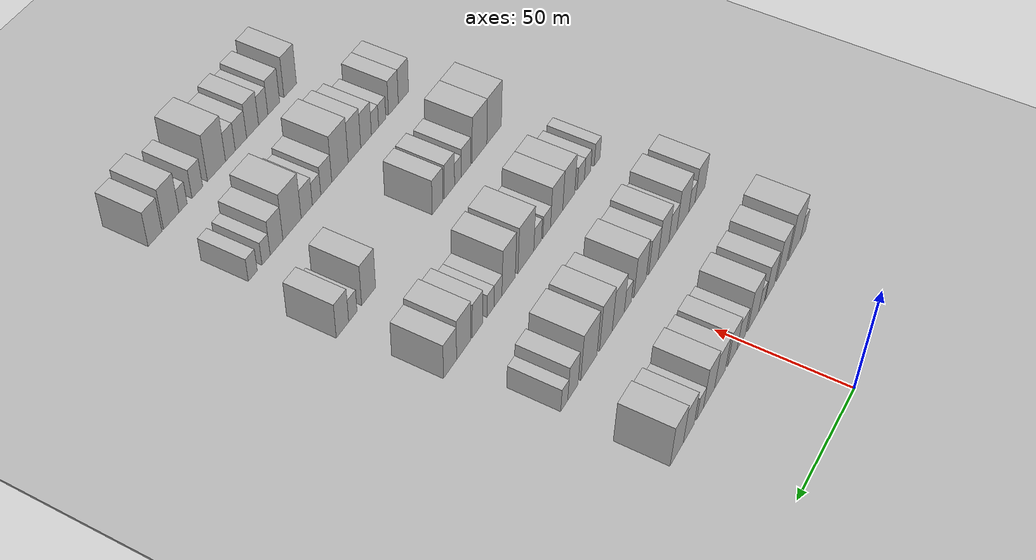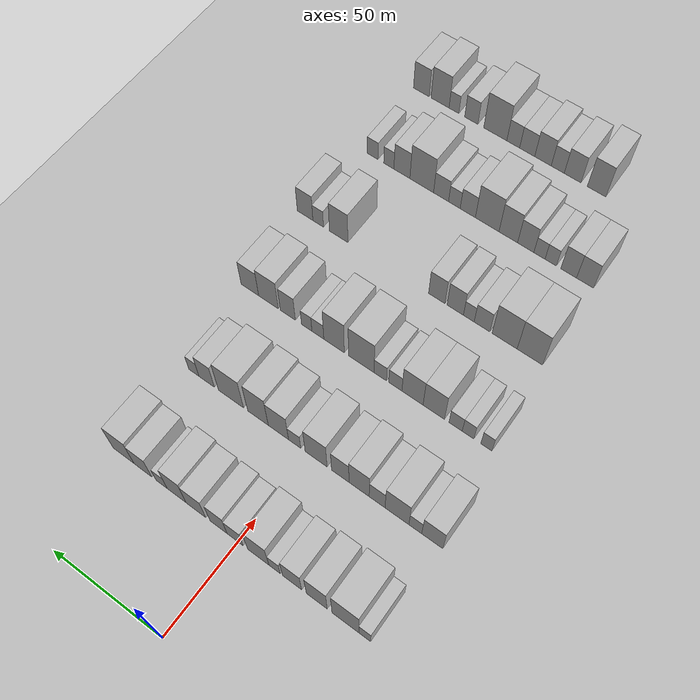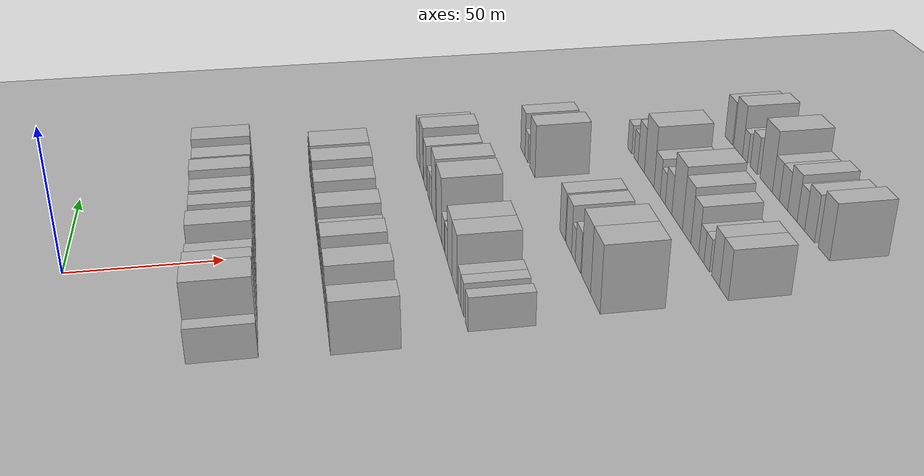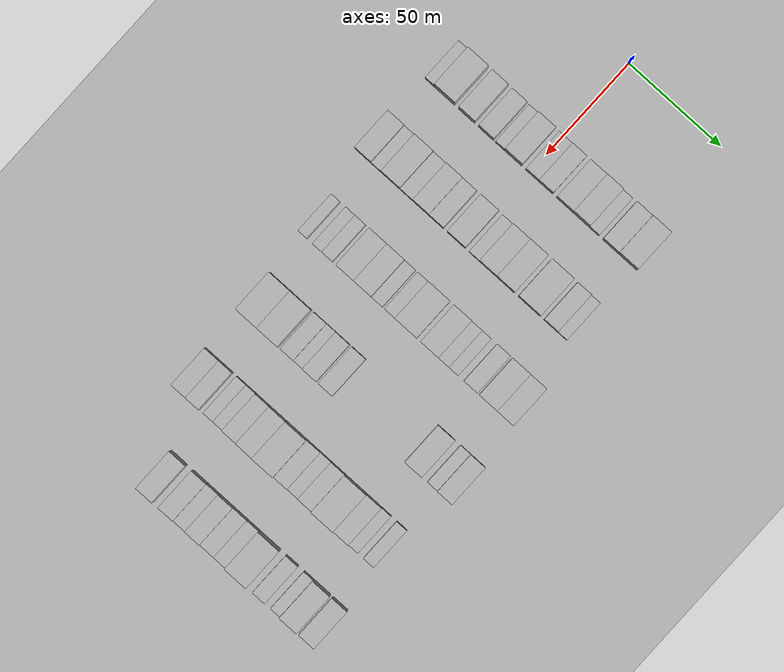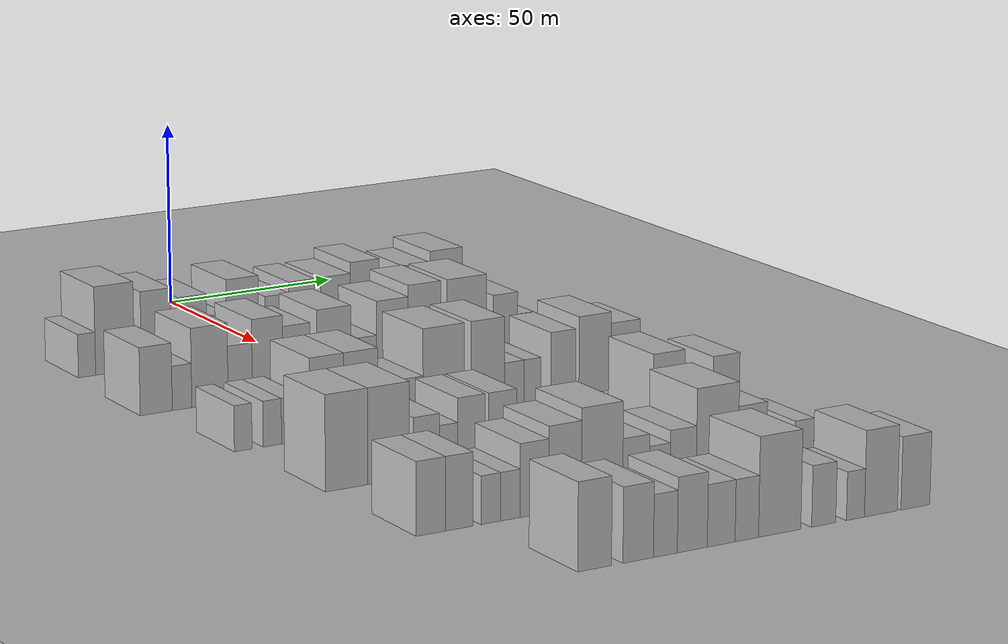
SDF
<sdf version="1.6">
 <world name="default">
  <include><name>ground_plane_1</name><uri>model://HANNAS_ground_plane</uri></include>
  <include>
   <name>ground_plane_2</name>
   <uri>model://HANNAS_ground_plane</uri>
   <pose>100 0 0  0 0 0</pose>
  </include>
  <model name="building_61">
   <static>1</static>
   <pose>50.0000 -54.5059 0 0.000000 0.000000 0.000000</pose>
   <link name="link">
    <pose>0 0 6.00 0 0 0</pose>
    <collision name="collision"><geometry><box><size>20.0000 4.9159 12.0000</size></box></geometry></collision>
    <visual name="visual">
     <cast_shadows>0</cast_shadows>
     <geometry><box><size>20.0000 4.9159 12.0000</size></box></geometry>
     <material>
      <script>
       <uri>model://HANNAS_wall/materials/scripts</uri>
       <uri>model://HANNAS_wall/materials/textures</uri>
       <name>vrc/HANNAS_wall</name>
      </script>
     </material>
    </visual>
   </link>
  </model>
  <model name="building_62">
   <static>1</static>
   <pose>50.0000 -46.4623 0 0.000000 0.000000 0.000000</pose>
   <link name="link">
    <pose>0 0 12.00 0 0 0</pose>
    <collision name="collision"><geometry><box><size>20.0000 11.1713 24.0000</size></box></geometry></collision>
    <visual name="visual">
     <cast_shadows>0</cast_shadows>
     <geometry><box><size>20.0000 11.1713 24.0000</size></box></geometry>
     <material>
      <script>
       <uri>model://HANNAS_wall/materials/scripts</uri>
       <uri>model://HANNAS_wall/materials/textures</uri>
       <name>vrc/HANNAS_wall</name>
      </script>
     </material>
    </visual>
   </link>
  </model>
  <model name="building_63">
   <static>1</static>
   <pose>50.0000 -34.4518 0 0.000000 0.000000 0.000000</pose>
   <link name="link">
    <pose>0 0 10.50 0 0 0</pose>
    <collision name="collision"><geometry><box><size>20.0000 8.8497 21.0000</size></box></geometry></collision>
    <visual name="visual">
     <cast_shadows>0</cast_shadows>
     <geometry><box><size>20.0000 8.8497 21.0000</size></box></geometry>
     <material>
      <script>
       <uri>model://HANNAS_wall/materials/scripts</uri>
       <uri>model://HANNAS_wall/materials/textures</uri>
       <name>vrc/HANNAS_wall</name>
      </script>
     </material>
    </visual>
   </link>
  </model>
  <model name="building_64">
   <static>1</static>
   <pose>50.0000 -23.8980 0 0.000000 0.000000 0.000000</pose>
   <link name="link">
    <pose>0 0 9.00 0 0 0</pose>
    <collision name="collision"><geometry><box><size>20.0000 8.2579 18.0000</size></box></geometry></collision>
    <visual name="visual">
     <cast_shadows>0</cast_shadows>
     <geometry><box><size>20.0000 8.2579 18.0000</size></box></geometry>
     <material>
      <script>
       <uri>model://HANNAS_wall/materials/scripts</uri>
       <uri>model://HANNAS_wall/materials/textures</uri>
       <name>vrc/HANNAS_wall</name>
      </script>
     </material>
    </visual>
   </link>
  </model>
  <model name="building_65">
   <static>1</static>
   <pose>50.0000 -16.3139 0 0.000000 0.000000 0.000000</pose>
   <link name="link">
    <pose>0 0 6.00 0 0 0</pose>
    <collision name="collision"><geometry><box><size>20.0000 4.9104 12.0000</size></box></geometry></collision>
    <visual name="visual">
     <cast_shadows>0</cast_shadows>
     <geometry><box><size>20.0000 4.9104 12.0000</size></box></geometry>
     <material>
      <script>
       <uri>model://HANNAS_wall/materials/scripts</uri>
       <uri>model://HANNAS_wall/materials/textures</uri>
       <name>vrc/HANNAS_wall</name>
      </script>
     </material>
    </visual>
   </link>
  </model>
  <model name="building_66">
   <static>1</static>
   <pose>50.0000 -9.1267 0 0.000000 0.000000 0.000000</pose>
   <link name="link">
    <pose>0 0 10.50 0 0 0</pose>
    <collision name="collision"><geometry><box><size>20.0000 9.4640 21.0000</size></box></geometry></collision>
    <visual name="visual">
     <cast_shadows>0</cast_shadows>
     <geometry><box><size>20.0000 9.4640 21.0000</size></box></geometry>
     <material>
      <script>
       <uri>model://HANNAS_wall/materials/scripts</uri>
       <uri>model://HANNAS_wall/materials/textures</uri>
       <name>vrc/HANNAS_wall</name>
      </script>
     </material>
    </visual>
   </link>
  </model>
  <model name="building_67">
   <static>1</static>
   <pose>50.0000 1.1772 0 0.000000 0.000000 0.000000</pose>
   <link name="link">
    <pose>0 0 7.50 0 0 0</pose>
    <collision name="collision"><geometry><box><size>20.0000 7.1438 15.0000</size></box></geometry></collision>
    <visual name="visual">
     <cast_shadows>0</cast_shadows>
     <geometry><box><size>20.0000 7.1438 15.0000</size></box></geometry>
     <material>
      <script>
       <uri>model://HANNAS_wall/materials/scripts</uri>
       <uri>model://HANNAS_wall/materials/textures</uri>
       <name>vrc/HANNAS_wall</name>
      </script>
     </material>
    </visual>
   </link>
  </model>
  <model name="building_68">
   <static>1</static>
   <pose>50.0000 8.6131 0 0.000000 0.000000 0.000000</pose>
   <link name="link">
    <pose>0 0 9.00 0 0 0</pose>
    <collision name="collision"><geometry><box><size>20.0000 7.7280 18.0000</size></box></geometry></collision>
    <visual name="visual">
     <cast_shadows>0</cast_shadows>
     <geometry><box><size>20.0000 7.7280 18.0000</size></box></geometry>
     <material>
      <script>
       <uri>model://HANNAS_wall/materials/scripts</uri>
       <uri>model://HANNAS_wall/materials/textures</uri>
       <name>vrc/HANNAS_wall</name>
      </script>
     </material>
    </visual>
   </link>
  </model>
  <model name="building_69">
   <static>1</static>
   <pose>50.0000 18.9606 0 0.000000 0.000000 0.000000</pose>
   <link name="link">
    <pose>0 0 9.00 0 0 0</pose>
    <collision name="collision"><geometry><box><size>20.0000 8.9669 18.0000</size></box></geometry></collision>
    <visual name="visual">
     <cast_shadows>0</cast_shadows>
     <geometry><box><size>20.0000 8.9669 18.0000</size></box></geometry>
     <material>
      <script>
       <uri>model://HANNAS_wall/materials/scripts</uri>
       <uri>model://HANNAS_wall/materials/textures</uri>
       <name>vrc/HANNAS_wall</name>
      </script>
     </material>
    </visual>
   </link>
  </model>
  <model name="building_70">
   <static>1</static>
   <pose>50.0000 27.8779 0 0.000000 0.000000 0.000000</pose>
   <link name="link">
    <pose>0 0 10.50 0 0 0</pose>
    <collision name="collision"><geometry><box><size>20.0000 8.8678 21.0000</size></box></geometry></collision>
    <visual name="visual">
     <cast_shadows>0</cast_shadows>
     <geometry><box><size>20.0000 8.8678 21.0000</size></box></geometry>
     <material>
      <script>
       <uri>model://HANNAS_wall/materials/scripts</uri>
       <uri>model://HANNAS_wall/materials/textures</uri>
       <name>vrc/HANNAS_wall</name>
      </script>
     </material>
    </visual>
   </link>
  </model>
  <model name="building_71">
   <static>1</static>
   <pose>50.0000 34.9566 0 0.000000 0.000000 0.000000</pose>
   <link name="link">
    <pose>0 0 6.00 0 0 0</pose>
    <collision name="collision"><geometry><box><size>20.0000 5.2895 12.0000</size></box></geometry></collision>
    <visual name="visual">
     <cast_shadows>0</cast_shadows>
     <geometry><box><size>20.0000 5.2895 12.0000</size></box></geometry>
     <material>
      <script>
       <uri>model://HANNAS_wall/materials/scripts</uri>
       <uri>model://HANNAS_wall/materials/textures</uri>
       <name>vrc/HANNAS_wall</name>
      </script>
     </material>
    </visual>
   </link>
  </model>
  <model name="building_72">
   <static>1</static>
   <pose>50.0000 43.8413 0 0.000000 0.000000 0.000000</pose>
   <link name="link">
    <pose>0 0 9.00 0 0 0</pose>
    <collision name="collision"><geometry><box><size>20.0000 8.4801 18.0000</size></box></geometry></collision>
    <visual name="visual">
     <cast_shadows>0</cast_shadows>
     <geometry><box><size>20.0000 8.4801 18.0000</size></box></geometry>
     <material>
      <script>
       <uri>model://HANNAS_wall/materials/scripts</uri>
       <uri>model://HANNAS_wall/materials/textures</uri>
       <name>vrc/HANNAS_wall</name>
      </script>
     </material>
    </visual>
   </link>
  </model>
  <model name="building_73">
   <static>1</static>
   <pose>50.0000 53.1455 0 0.000000 0.000000 0.000000</pose>
   <link name="link">
    <pose>0 0 10.50 0 0 0</pose>
    <collision name="collision"><geometry><box><size>20.0000 10.1283 21.0000</size></box></geometry></collision>
    <visual name="visual">
     <cast_shadows>0</cast_shadows>
     <geometry><box><size>20.0000 10.1283 21.0000</size></box></geometry>
     <material>
      <script>
       <uri>model://HANNAS_wall/materials/scripts</uri>
       <uri>model://HANNAS_wall/materials/textures</uri>
       <name>vrc/HANNAS_wall</name>
      </script>
     </material>
    </visual>
   </link>
  </model>
  <model name="building_198">
   <static>1</static>
   <pose>90.0000 -54.6024 0 0.000000 0.000000 0.000000</pose>
   <link name="link">
    <pose>0 0 9.00 0 0 0</pose>
    <collision name="collision"><geometry><box><size>20.0000 8.8986 18.0000</size></box></geometry></collision>
    <visual name="visual">
     <cast_shadows>0</cast_shadows>
     <geometry><box><size>20.0000 8.8986 18.0000</size></box></geometry>
     <material>
      <script>
       <uri>model://HANNAS_wall/materials/scripts</uri>
       <uri>model://HANNAS_wall/materials/textures</uri>
       <name>vrc/HANNAS_wall</name>
      </script>
     </material>
    </visual>
   </link>
  </model>
  <model name="building_199">
   <static>1</static>
   <pose>90.0000 -47.4172 0 0.000000 0.000000 0.000000</pose>
   <link name="link">
    <pose>0 0 6.00 0 0 0</pose>
    <collision name="collision"><geometry><box><size>20.0000 5.4717 12.0000</size></box></geometry></collision>
    <visual name="visual">
     <cast_shadows>0</cast_shadows>
     <geometry><box><size>20.0000 5.4717 12.0000</size></box></geometry>
     <material>
      <script>
       <uri>model://HANNAS_wall/materials/scripts</uri>
       <uri>model://HANNAS_wall/materials/textures</uri>
       <name>vrc/HANNAS_wall</name>
      </script>
     </material>
    </visual>
   </link>
  </model>
  <model name="building_200">
   <static>1</static>
   <pose>90.0000 -39.5560 0 0.000000 0.000000 0.000000</pose>
   <link name="link">
    <pose>0 0 10.50 0 0 0</pose>
    <collision name="collision"><geometry><box><size>20.0000 10.2507 21.0000</size></box></geometry></collision>
    <visual name="visual">
     <cast_shadows>0</cast_shadows>
     <geometry><box><size>20.0000 10.2507 21.0000</size></box></geometry>
     <material>
      <script>
       <uri>model://HANNAS_wall/materials/scripts</uri>
       <uri>model://HANNAS_wall/materials/textures</uri>
       <name>vrc/HANNAS_wall</name>
      </script>
     </material>
    </visual>
   </link>
  </model>
  <model name="building_201">
   <static>1</static>
   <pose>90.0000 -30.9762 0 0.000000 0.000000 0.000000</pose>
   <link name="link">
    <pose>0 0 7.50 0 0 0</pose>
    <collision name="collision"><geometry><box><size>20.0000 6.9089 15.0000</size></box></geometry></collision>
    <visual name="visual">
     <cast_shadows>0</cast_shadows>
     <geometry><box><size>20.0000 6.9089 15.0000</size></box></geometry>
     <material>
      <script>
       <uri>model://HANNAS_wall/materials/scripts</uri>
       <uri>model://HANNAS_wall/materials/textures</uri>
       <name>vrc/HANNAS_wall</name>
      </script>
     </material>
    </visual>
   </link>
  </model>
  <model name="building_202">
   <static>1</static>
   <pose>90.0000 -23.0960 0 0.000000 0.000000 0.000000</pose>
   <link name="link">
    <pose>0 0 10.50 0 0 0</pose>
    <collision name="collision"><geometry><box><size>20.0000 8.8516 21.0000</size></box></geometry></collision>
    <visual name="visual">
     <cast_shadows>0</cast_shadows>
     <geometry><box><size>20.0000 8.8516 21.0000</size></box></geometry>
     <material>
      <script>
       <uri>model://HANNAS_wall/materials/scripts</uri>
       <uri>model://HANNAS_wall/materials/textures</uri>
       <name>vrc/HANNAS_wall</name>
      </script>
     </material>
    </visual>
   </link>
  </model>
  <model name="building_203">
   <static>1</static>
   <pose>90.0000 -14.7647 0 0.000000 0.000000 0.000000</pose>
   <link name="link">
    <pose>0 0 9.00 0 0 0</pose>
    <collision name="collision"><geometry><box><size>20.0000 7.8109 18.0000</size></box></geometry></collision>
    <visual name="visual">
     <cast_shadows>0</cast_shadows>
     <geometry><box><size>20.0000 7.8109 18.0000</size></box></geometry>
     <material>
      <script>
       <uri>model://HANNAS_wall/materials/scripts</uri>
       <uri>model://HANNAS_wall/materials/textures</uri>
       <name>vrc/HANNAS_wall</name>
      </script>
     </material>
    </visual>
   </link>
  </model>
  <model name="building_204">
   <static>1</static>
   <pose>90.0000 -3.8953 0 0.000000 0.000000 0.000000</pose>
   <link name="link">
    <pose>0 0 10.50 0 0 0</pose>
    <collision name="collision"><geometry><box><size>20.0000 9.9278 21.0000</size></box></geometry></collision>
    <visual name="visual">
     <cast_shadows>0</cast_shadows>
     <geometry><box><size>20.0000 9.9278 21.0000</size></box></geometry>
     <material>
      <script>
       <uri>model://HANNAS_wall/materials/scripts</uri>
       <uri>model://HANNAS_wall/materials/textures</uri>
       <name>vrc/HANNAS_wall</name>
      </script>
     </material>
    </visual>
   </link>
  </model>
  <model name="building_205">
   <static>1</static>
   <pose>90.0000 5.8681 0 0.000000 0.000000 0.000000</pose>
   <link name="link">
    <pose>0 0 6.00 0 0 0</pose>
    <collision name="collision"><geometry><box><size>20.0000 5.5990 12.0000</size></box></geometry></collision>
    <visual name="visual">
     <cast_shadows>0</cast_shadows>
     <geometry><box><size>20.0000 5.5990 12.0000</size></box></geometry>
     <material>
      <script>
       <uri>model://HANNAS_wall/materials/scripts</uri>
       <uri>model://HANNAS_wall/materials/textures</uri>
       <name>vrc/HANNAS_wall</name>
      </script>
     </material>
    </visual>
   </link>
  </model>
  <model name="building_206">
   <static>1</static>
   <pose>90.0000 13.3662 0 0.000000 0.000000 0.000000</pose>
   <link name="link">
    <pose>0 0 10.50 0 0 0</pose>
    <collision name="collision"><geometry><box><size>20.0000 9.3972 21.0000</size></box></geometry></collision>
    <visual name="visual">
     <cast_shadows>0</cast_shadows>
     <geometry><box><size>20.0000 9.3972 21.0000</size></box></geometry>
     <material>
      <script>
       <uri>model://HANNAS_wall/materials/scripts</uri>
       <uri>model://HANNAS_wall/materials/textures</uri>
       <name>vrc/HANNAS_wall</name>
      </script>
     </material>
    </visual>
   </link>
  </model>
  <model name="building_207">
   <static>1</static>
   <pose>90.0000 22.9101 0 0.000000 0.000000 0.000000</pose>
   <link name="link">
    <pose>0 0 12.00 0 0 0</pose>
    <collision name="collision"><geometry><box><size>20.0000 9.6906 24.0000</size></box></geometry></collision>
    <visual name="visual">
     <cast_shadows>0</cast_shadows>
     <geometry><box><size>20.0000 9.6906 24.0000</size></box></geometry>
     <material>
      <script>
       <uri>model://HANNAS_wall/materials/scripts</uri>
       <uri>model://HANNAS_wall/materials/textures</uri>
       <name>vrc/HANNAS_wall</name>
      </script>
     </material>
    </visual>
   </link>
  </model>
  <model name="building_208">
   <static>1</static>
   <pose>90.0000 35.7523 0 0.000000 0.000000 0.000000</pose>
   <link name="link">
    <pose>0 0 12.00 0 0 0</pose>
    <collision name="collision"><geometry><box><size>20.0000 11.9938 24.0000</size></box></geometry></collision>
    <visual name="visual">
     <cast_shadows>0</cast_shadows>
     <geometry><box><size>20.0000 11.9938 24.0000</size></box></geometry>
     <material>
      <script>
       <uri>model://HANNAS_wall/materials/scripts</uri>
       <uri>model://HANNAS_wall/materials/textures</uri>
       <name>vrc/HANNAS_wall</name>
      </script>
     </material>
    </visual>
   </link>
  </model>
  <model name="building_209">
   <static>1</static>
   <pose>90.0000 47.4913 0 0.000000 0.000000 0.000000</pose>
   <link name="link">
    <pose>0 0 9.00 0 0 0</pose>
    <collision name="collision"><geometry><box><size>20.0000 7.4842 18.0000</size></box></geometry></collision>
    <visual name="visual">
     <cast_shadows>0</cast_shadows>
     <geometry><box><size>20.0000 7.4842 18.0000</size></box></geometry>
     <material>
      <script>
       <uri>model://HANNAS_wall/materials/scripts</uri>
       <uri>model://HANNAS_wall/materials/textures</uri>
       <name>vrc/HANNAS_wall</name>
      </script>
     </material>
    </visual>
   </link>
  </model>
  <model name="building_210">
   <static>1</static>
   <pose>90.0000 53.7269 0 0.000000 0.000000 0.000000</pose>
   <link name="link">
    <pose>0 0 6.00 0 0 0</pose>
    <collision name="collision"><geometry><box><size>20.0000 4.9869 12.0000</size></box></geometry></collision>
    <visual name="visual">
     <cast_shadows>0</cast_shadows>
     <geometry><box><size>20.0000 4.9869 12.0000</size></box></geometry>
     <material>
      <script>
       <uri>model://HANNAS_wall/materials/scripts</uri>
       <uri>model://HANNAS_wall/materials/textures</uri>
       <name>vrc/HANNAS_wall</name>
      </script>
     </material>
    </visual>
   </link>
  </model>
  <model name="building_335">
   <static>1</static>
   <pose>130.0000 -51.2250 0 0.000000 0.000000 0.000000</pose>
   <link name="link">
    <pose>0 0 6.00 0 0 0</pose>
    <collision name="collision"><geometry><box><size>20.0000 4.8207 12.0000</size></box></geometry></collision>
    <visual name="visual">
     <cast_shadows>0</cast_shadows>
     <geometry><box><size>20.0000 4.8207 12.0000</size></box></geometry>
     <material>
      <script>
       <uri>model://HANNAS_wall/materials/scripts</uri>
       <uri>model://HANNAS_wall/materials/textures</uri>
       <name>vrc/HANNAS_wall</name>
      </script>
     </material>
    </visual>
   </link>
  </model>
  <model name="building_336">
   <static>1</static>
   <pose>130.0000 -43.2730 0 0.000000 0.000000 0.000000</pose>
   <link name="link">
    <pose>0 0 6.00 0 0 0</pose>
    <collision name="collision"><geometry><box><size>20.0000 5.0834 12.0000</size></box></geometry></collision>
    <visual name="visual">
     <cast_shadows>0</cast_shadows>
     <geometry><box><size>20.0000 5.0834 12.0000</size></box></geometry>
     <material>
      <script>
       <uri>model://HANNAS_wall/materials/scripts</uri>
       <uri>model://HANNAS_wall/materials/textures</uri>
       <name>vrc/HANNAS_wall</name>
      </script>
     </material>
    </visual>
   </link>
  </model>
  <model name="building_337">
   <static>1</static>
   <pose>130.0000 -37.8153 0 0.000000 0.000000 0.000000</pose>
   <link name="link">
    <pose>0 0 6.00 0 0 0</pose>
    <collision name="collision"><geometry><box><size>20.0000 5.8320 12.0000</size></box></geometry></collision>
    <visual name="visual">
     <cast_shadows>0</cast_shadows>
     <geometry><box><size>20.0000 5.8320 12.0000</size></box></geometry>
     <material>
      <script>
       <uri>model://HANNAS_wall/materials/scripts</uri>
       <uri>model://HANNAS_wall/materials/textures</uri>
       <name>vrc/HANNAS_wall</name>
      </script>
     </material>
    </visual>
   </link>
  </model>
  <model name="building_338">
   <static>1</static>
   <pose>130.0000 -28.1213 0 0.000000 0.000000 0.000000</pose>
   <link name="link">
    <pose>0 0 10.50 0 0 0</pose>
    <collision name="collision"><geometry><box><size>20.0000 9.5560 21.0000</size></box></geometry></collision>
    <visual name="visual">
     <cast_shadows>0</cast_shadows>
     <geometry><box><size>20.0000 9.5560 21.0000</size></box></geometry>
     <material>
      <script>
       <uri>model://HANNAS_wall/materials/scripts</uri>
       <uri>model://HANNAS_wall/materials/textures</uri>
       <name>vrc/HANNAS_wall</name>
      </script>
     </material>
    </visual>
   </link>
  </model>
  <model name="building_339">
   <static>1</static>
   <pose>130.0000 -18.5598 0 0.000000 0.000000 0.000000</pose>
   <link name="link">
    <pose>0 0 10.50 0 0 0</pose>
    <collision name="collision"><geometry><box><size>20.0000 9.5671 21.0000</size></box></geometry></collision>
    <visual name="visual">
     <cast_shadows>0</cast_shadows>
     <geometry><box><size>20.0000 9.5671 21.0000</size></box></geometry>
     <material>
      <script>
       <uri>model://HANNAS_wall/materials/scripts</uri>
       <uri>model://HANNAS_wall/materials/textures</uri>
       <name>vrc/HANNAS_wall</name>
      </script>
     </material>
    </visual>
   </link>
  </model>
  <model name="building_340">
   <static>1</static>
   <pose>130.0000 -10.7768 0 0.000000 0.000000 0.000000</pose>
   <link name="link">
    <pose>0 0 6.00 0 0 0</pose>
    <collision name="collision"><geometry><box><size>20.0000 5.9989 12.0000</size></box></geometry></collision>
    <visual name="visual">
     <cast_shadows>0</cast_shadows>
     <geometry><box><size>20.0000 5.9989 12.0000</size></box></geometry>
     <material>
      <script>
       <uri>model://HANNAS_wall/materials/scripts</uri>
       <uri>model://HANNAS_wall/materials/textures</uri>
       <name>vrc/HANNAS_wall</name>
      </script>
     </material>
    </visual>
   </link>
  </model>
  <model name="building_341">
   <static>1</static>
   <pose>130.0000 -3.8671 0 0.000000 0.000000 0.000000</pose>
   <link name="link">
    <pose>0 0 6.00 0 0 0</pose>
    <collision name="collision"><geometry><box><size>20.0000 5.8204 12.0000</size></box></geometry></collision>
    <visual name="visual">
     <cast_shadows>0</cast_shadows>
     <geometry><box><size>20.0000 5.8204 12.0000</size></box></geometry>
     <material>
      <script>
       <uri>model://HANNAS_wall/materials/scripts</uri>
       <uri>model://HANNAS_wall/materials/textures</uri>
       <name>vrc/HANNAS_wall</name>
      </script>
     </material>
    </visual>
   </link>
  </model>
  <model name="building_342">
   <static>1</static>
   <pose>130.0000 4.9769 0 0.000000 0.000000 0.000000</pose>
   <link name="link">
    <pose>0 0 12.00 0 0 0</pose>
    <collision name="collision"><geometry><box><size>20.0000 11.8677 24.0000</size></box></geometry></collision>
    <visual name="visual">
     <cast_shadows>0</cast_shadows>
     <geometry><box><size>20.0000 11.8677 24.0000</size></box></geometry>
     <material>
      <script>
       <uri>model://HANNAS_wall/materials/scripts</uri>
       <uri>model://HANNAS_wall/materials/textures</uri>
       <name>vrc/HANNAS_wall</name>
      </script>
     </material>
    </visual>
   </link>
  </model>
  <model name="building_343">
   <static>1</static>
   <pose>130.0000 17.7743 0 0.000000 0.000000 0.000000</pose>
   <link name="link">
    <pose>0 0 12.00 0 0 0</pose>
    <collision name="collision"><geometry><box><size>20.0000 9.7270 24.0000</size></box></geometry></collision>
    <visual name="visual">
     <cast_shadows>0</cast_shadows>
     <geometry><box><size>20.0000 9.7270 24.0000</size></box></geometry>
     <material>
      <script>
       <uri>model://HANNAS_wall/materials/scripts</uri>
       <uri>model://HANNAS_wall/materials/textures</uri>
       <name>vrc/HANNAS_wall</name>
      </script>
     </material>
    </visual>
   </link>
  </model>
  <model name="building_344">
   <static>1</static>
   <pose>130.0000 25.5133 0 0.000000 0.000000 0.000000</pose>
   <link name="link">
    <pose>0 0 6.00 0 0 0</pose>
    <collision name="collision"><geometry><box><size>20.0000 5.7509 12.0000</size></box></geometry></collision>
    <visual name="visual">
     <cast_shadows>0</cast_shadows>
     <geometry><box><size>20.0000 5.7509 12.0000</size></box></geometry>
     <material>
      <script>
       <uri>model://HANNAS_wall/materials/scripts</uri>
       <uri>model://HANNAS_wall/materials/textures</uri>
       <name>vrc/HANNAS_wall</name>
      </script>
     </material>
    </visual>
   </link>
  </model>
  <model name="building_345">
   <static>1</static>
   <pose>130.0000 30.8839 0 0.000000 0.000000 0.000000</pose>
   <link name="link">
    <pose>0 0 6.00 0 0 0</pose>
    <collision name="collision"><geometry><box><size>20.0000 4.9903 12.0000</size></box></geometry></collision>
    <visual name="visual">
     <cast_shadows>0</cast_shadows>
     <geometry><box><size>20.0000 4.9903 12.0000</size></box></geometry>
     <material>
      <script>
       <uri>model://HANNAS_wall/materials/scripts</uri>
       <uri>model://HANNAS_wall/materials/textures</uri>
       <name>vrc/HANNAS_wall</name>
      </script>
     </material>
    </visual>
   </link>
  </model>
  <model name="building_346">
   <static>1</static>
   <pose>130.0000 40.0573 0 0.000000 0.000000 0.000000</pose>
   <link name="link">
    <pose>0 0 9.00 0 0 0</pose>
    <collision name="collision"><geometry><box><size>20.0000 7.3564 18.0000</size></box></geometry></collision>
    <visual name="visual">
     <cast_shadows>0</cast_shadows>
     <geometry><box><size>20.0000 7.3564 18.0000</size></box></geometry>
     <material>
      <script>
       <uri>model://HANNAS_wall/materials/scripts</uri>
       <uri>model://HANNAS_wall/materials/textures</uri>
       <name>vrc/HANNAS_wall</name>
      </script>
     </material>
    </visual>
   </link>
  </model>
  <model name="building_347">
   <static>1</static>
   <pose>130.0000 49.6051 0 0.000000 0.000000 0.000000</pose>
   <link name="link">
    <pose>0 0 10.50 0 0 0</pose>
    <collision name="collision"><geometry><box><size>20.0000 9.7392 21.0000</size></box></geometry></collision>
    <visual name="visual">
     <cast_shadows>0</cast_shadows>
     <geometry><box><size>20.0000 9.7392 21.0000</size></box></geometry>
     <material>
      <script>
       <uri>model://HANNAS_wall/materials/scripts</uri>
       <uri>model://HANNAS_wall/materials/textures</uri>
       <name>vrc/HANNAS_wall</name>
      </script>
     </material>
    </visual>
   </link>
  </model>
  <model name="building_348">
   <static>1</static>
   <pose>130.0000 58.8815 0 0.000000 0.000000 0.000000</pose>
   <link name="link">
    <pose>0 0 9.00 0 0 0</pose>
    <collision name="collision"><geometry><box><size>20.0000 8.8138 18.0000</size></box></geometry></collision>
    <visual name="visual">
     <cast_shadows>0</cast_shadows>
     <geometry><box><size>20.0000 8.8138 18.0000</size></box></geometry>
     <material>
      <script>
       <uri>model://HANNAS_wall/materials/scripts</uri>
       <uri>model://HANNAS_wall/materials/textures</uri>
       <name>vrc/HANNAS_wall</name>
      </script>
     </material>
    </visual>
   </link>
  </model>
  <model name="building_468">
   <static>1</static>
   <pose>170.0000 -45.0610 0 0.000000 0.000000 0.000000</pose>
   <link name="link">
    <pose>0 0 12.00 0 0 0</pose>
    <collision name="collision"><geometry><box><size>20.0000 11.3438 24.0000</size></box></geometry></collision>
    <visual name="visual">
     <cast_shadows>0</cast_shadows>
     <geometry><box><size>20.0000 11.3438 24.0000</size></box></geometry>
     <material>
      <script>
       <uri>model://HANNAS_wall/materials/scripts</uri>
       <uri>model://HANNAS_wall/materials/textures</uri>
       <name>vrc/HANNAS_wall</name>
      </script>
     </material>
    </visual>
   </link>
  </model>
  <model name="building_469">
   <static>1</static>
   <pose>170.0000 -33.7291 0 0.000000 0.000000 0.000000</pose>
   <link name="link">
    <pose>0 0 12.00 0 0 0</pose>
    <collision name="collision"><geometry><box><size>20.0000 11.3199 24.0000</size></box></geometry></collision>
    <visual name="visual">
     <cast_shadows>0</cast_shadows>
     <geometry><box><size>20.0000 11.3199 24.0000</size></box></geometry>
     <material>
      <script>
       <uri>model://HANNAS_wall/materials/scripts</uri>
       <uri>model://HANNAS_wall/materials/textures</uri>
       <name>vrc/HANNAS_wall</name>
      </script>
     </material>
    </visual>
   </link>
  </model>
  <model name="building_470">
   <static>1</static>
   <pose>170.0000 -23.4726 0 0.000000 0.000000 0.000000</pose>
   <link name="link">
    <pose>0 0 7.50 0 0 0</pose>
    <collision name="collision"><geometry><box><size>20.0000 7.1930 15.0000</size></box></geometry></collision>
    <visual name="visual">
     <cast_shadows>0</cast_shadows>
     <geometry><box><size>20.0000 7.1930 15.0000</size></box></geometry>
     <material>
      <script>
       <uri>model://HANNAS_wall/materials/scripts</uri>
       <uri>model://HANNAS_wall/materials/textures</uri>
       <name>vrc/HANNAS_wall</name>
      </script>
     </material>
    </visual>
   </link>
  </model>
  <model name="building_471">
   <static>1</static>
   <pose>170.0000 -17.3934 0 0.000000 0.000000 0.000000</pose>
   <link name="link">
    <pose>0 0 6.00 0 0 0</pose>
    <collision name="collision"><geometry><box><size>20.0000 4.9655 12.0000</size></box></geometry></collision>
    <visual name="visual">
     <cast_shadows>0</cast_shadows>
     <geometry><box><size>20.0000 4.9655 12.0000</size></box></geometry>
     <material>
      <script>
       <uri>model://HANNAS_wall/materials/scripts</uri>
       <uri>model://HANNAS_wall/materials/textures</uri>
       <name>vrc/HANNAS_wall</name>
      </script>
     </material>
    </visual>
   </link>
  </model>
  <model name="building_472">
   <static>1</static>
   <pose>170.0000 -11.1118 0 0.000000 0.000000 0.000000</pose>
   <link name="link">
    <pose>0 0 9.00 0 0 0</pose>
    <collision name="collision"><geometry><box><size>20.0000 7.5977 18.0000</size></box></geometry></collision>
    <visual name="visual">
     <cast_shadows>0</cast_shadows>
     <geometry><box><size>20.0000 7.5977 18.0000</size></box></geometry>
     <material>
      <script>
       <uri>model://HANNAS_wall/materials/scripts</uri>
       <uri>model://HANNAS_wall/materials/textures</uri>
       <name>vrc/HANNAS_wall</name>
      </script>
     </material>
    </visual>
   </link>
  </model>
  <model name="building_473">
   <static>1</static>
   <pose>170.0000 -2.4587 0 0.000000 0.000000 0.000000</pose>
   <link name="link">
    <pose>0 0 9.00 0 0 0</pose>
    <collision name="collision"><geometry><box><size>20.0000 7.7085 18.0000</size></box></geometry></collision>
    <visual name="visual">
     <cast_shadows>0</cast_shadows>
     <geometry><box><size>20.0000 7.7085 18.0000</size></box></geometry>
     <material>
      <script>
       <uri>model://HANNAS_wall/materials/scripts</uri>
       <uri>model://HANNAS_wall/materials/textures</uri>
       <name>vrc/HANNAS_wall</name>
      </script>
     </material>
    </visual>
   </link>
  </model>
  <model name="building_474">
   <static>1</static>
   <pose>170.0000 45.2420 0 0.000000 0.000000 0.000000</pose>
   <link name="link">
    <pose>0 0 10.50 0 0 0</pose>
    <collision name="collision"><geometry><box><size>20.0000 9.2310 21.0000</size></box></geometry></collision>
    <visual name="visual">
     <cast_shadows>0</cast_shadows>
     <geometry><box><size>20.0000 9.2310 21.0000</size></box></geometry>
     <material>
      <script>
       <uri>model://HANNAS_wall/materials/scripts</uri>
       <uri>model://HANNAS_wall/materials/textures</uri>
       <name>vrc/HANNAS_wall</name>
      </script>
     </material>
    </visual>
   </link>
  </model>
  <model name="building_475">
   <static>1</static>
   <pose>170.0000 55.5498 0 0.000000 0.000000 0.000000</pose>
   <link name="link">
    <pose>0 0 6.00 0 0 0</pose>
    <collision name="collision"><geometry><box><size>20.0000 5.3845 12.0000</size></box></geometry></collision>
    <visual name="visual">
     <cast_shadows>0</cast_shadows>
     <geometry><box><size>20.0000 5.3845 12.0000</size></box></geometry>
     <material>
      <script>
       <uri>model://HANNAS_wall/materials/scripts</uri>
       <uri>model://HANNAS_wall/materials/textures</uri>
       <name>vrc/HANNAS_wall</name>
      </script>
     </material>
    </visual>
   </link>
  </model>
  <model name="building_476">
   <static>1</static>
   <pose>170.0000 62.2186 0 0.000000 0.000000 0.000000</pose>
   <link name="link">
    <pose>0 0 9.00 0 0 0</pose>
    <collision name="collision"><geometry><box><size>20.0000 7.9531 18.0000</size></box></geometry></collision>
    <visual name="visual">
     <cast_shadows>0</cast_shadows>
     <geometry><box><size>20.0000 7.9531 18.0000</size></box></geometry>
     <material>
      <script>
       <uri>model://HANNAS_wall/materials/scripts</uri>
       <uri>model://HANNAS_wall/materials/textures</uri>
       <name>vrc/HANNAS_wall</name>
      </script>
     </material>
    </visual>
   </link>
  </model>
  <model name="building_609">
   <static>1</static>
   <pose>210.0000 -45.8138 0 0.000000 0.000000 0.000000</pose>
   <link name="link">
    <pose>0 0 9.00 0 0 0</pose>
    <collision name="collision"><geometry><box><size>20.0000 7.7118 18.0000</size></box></geometry></collision>
    <visual name="visual">
     <cast_shadows>0</cast_shadows>
     <geometry><box><size>20.0000 7.7118 18.0000</size></box></geometry>
     <material>
      <script>
       <uri>model://HANNAS_wall/materials/scripts</uri>
       <uri>model://HANNAS_wall/materials/textures</uri>
       <name>vrc/HANNAS_wall</name>
      </script>
     </material>
    </visual>
   </link>
  </model>
  <model name="building_610">
   <static>1</static>
   <pose>210.0000 -38.3399 0 0.000000 0.000000 0.000000</pose>
   <link name="link">
    <pose>0 0 9.00 0 0 0</pose>
    <collision name="collision"><geometry><box><size>20.0000 7.2361 18.0000</size></box></geometry></collision>
    <visual name="visual">
     <cast_shadows>0</cast_shadows>
     <geometry><box><size>20.0000 7.2361 18.0000</size></box></geometry>
     <material>
      <script>
       <uri>model://HANNAS_wall/materials/scripts</uri>
       <uri>model://HANNAS_wall/materials/textures</uri>
       <name>vrc/HANNAS_wall</name>
      </script>
     </material>
    </visual>
   </link>
  </model>
  <model name="building_611">
   <static>1</static>
   <pose>210.0000 -30.0929 0 0.000000 0.000000 0.000000</pose>
   <link name="link">
    <pose>0 0 6.00 0 0 0</pose>
    <collision name="collision"><geometry><box><size>20.0000 5.2578 12.0000</size></box></geometry></collision>
    <visual name="visual">
     <cast_shadows>0</cast_shadows>
     <geometry><box><size>20.0000 5.2578 12.0000</size></box></geometry>
     <material>
      <script>
       <uri>model://HANNAS_wall/materials/scripts</uri>
       <uri>model://HANNAS_wall/materials/textures</uri>
       <name>vrc/HANNAS_wall</name>
      </script>
     </material>
    </visual>
   </link>
  </model>
  <model name="building_612">
   <static>1</static>
   <pose>210.0000 -24.8623 0 0.000000 0.000000 0.000000</pose>
   <link name="link">
    <pose>0 0 6.00 0 0 0</pose>
    <collision name="collision"><geometry><box><size>20.0000 5.2034 12.0000</size></box></geometry></collision>
    <visual name="visual">
     <cast_shadows>0</cast_shadows>
     <geometry><box><size>20.0000 5.2034 12.0000</size></box></geometry>
     <material>
      <script>
       <uri>model://HANNAS_wall/materials/scripts</uri>
       <uri>model://HANNAS_wall/materials/textures</uri>
       <name>vrc/HANNAS_wall</name>
      </script>
     </material>
    </visual>
   </link>
  </model>
  <model name="building_613">
   <static>1</static>
   <pose>210.0000 -18.4348 0 0.000000 0.000000 0.000000</pose>
   <link name="link">
    <pose>0 0 9.00 0 0 0</pose>
    <collision name="collision"><geometry><box><size>20.0000 7.6517 18.0000</size></box></geometry></collision>
    <visual name="visual">
     <cast_shadows>0</cast_shadows>
     <geometry><box><size>20.0000 7.6517 18.0000</size></box></geometry>
     <material>
      <script>
       <uri>model://HANNAS_wall/materials/scripts</uri>
       <uri>model://HANNAS_wall/materials/textures</uri>
       <name>vrc/HANNAS_wall</name>
      </script>
     </material>
    </visual>
   </link>
  </model>
  <model name="building_614">
   <static>1</static>
   <pose>210.0000 -10.1875 0 0.000000 0.000000 0.000000</pose>
   <link name="link">
    <pose>0 0 10.50 0 0 0</pose>
    <collision name="collision"><geometry><box><size>20.0000 8.8428 21.0000</size></box></geometry></collision>
    <visual name="visual">
     <cast_shadows>0</cast_shadows>
     <geometry><box><size>20.0000 8.8428 21.0000</size></box></geometry>
     <material>
      <script>
       <uri>model://HANNAS_wall/materials/scripts</uri>
       <uri>model://HANNAS_wall/materials/textures</uri>
       <name>vrc/HANNAS_wall</name>
      </script>
     </material>
    </visual>
   </link>
  </model>
  <model name="building_615">
   <static>1</static>
   <pose>210.0000 -0.0851 0 0.000000 0.000000 0.000000</pose>
   <link name="link">
    <pose>0 0 12.00 0 0 0</pose>
    <collision name="collision"><geometry><box><size>20.0000 11.3619 24.0000</size></box></geometry></collision>
    <visual name="visual">
     <cast_shadows>0</cast_shadows>
     <geometry><box><size>20.0000 11.3619 24.0000</size></box></geometry>
     <material>
      <script>
       <uri>model://HANNAS_wall/materials/scripts</uri>
       <uri>model://HANNAS_wall/materials/textures</uri>
       <name>vrc/HANNAS_wall</name>
      </script>
     </material>
    </visual>
   </link>
  </model>
  <model name="building_616">
   <static>1</static>
   <pose>210.0000 9.2990 0 0.000000 0.000000 0.000000</pose>
   <link name="link">
    <pose>0 0 7.50 0 0 0</pose>
    <collision name="collision"><geometry><box><size>20.0000 7.4063 15.0000</size></box></geometry></collision>
    <visual name="visual">
     <cast_shadows>0</cast_shadows>
     <geometry><box><size>20.0000 7.4063 15.0000</size></box></geometry>
     <material>
      <script>
       <uri>model://HANNAS_wall/materials/scripts</uri>
       <uri>model://HANNAS_wall/materials/textures</uri>
       <name>vrc/HANNAS_wall</name>
      </script>
     </material>
    </visual>
   </link>
  </model>
  <model name="building_617">
   <static>1</static>
   <pose>210.0000 15.8572 0 0.000000 0.000000 0.000000</pose>
   <link name="link">
    <pose>0 0 6.00 0 0 0</pose>
    <collision name="collision"><geometry><box><size>20.0000 5.7101 12.0000</size></box></geometry></collision>
    <visual name="visual">
     <cast_shadows>0</cast_shadows>
     <geometry><box><size>20.0000 5.7101 12.0000</size></box></geometry>
     <material>
      <script>
       <uri>model://HANNAS_wall/materials/scripts</uri>
       <uri>model://HANNAS_wall/materials/textures</uri>
       <name>vrc/HANNAS_wall</name>
      </script>
     </material>
    </visual>
   </link>
  </model>
  <model name="building_618">
   <static>1</static>
   <pose>210.0000 22.4184 0 0.000000 0.000000 0.000000</pose>
   <link name="link">
    <pose>0 0 7.50 0 0 0</pose>
    <collision name="collision"><geometry><box><size>20.0000 7.4123 15.0000</size></box></geometry></collision>
    <visual name="visual">
     <cast_shadows>0</cast_shadows>
     <geometry><box><size>20.0000 7.4123 15.0000</size></box></geometry>
     <material>
      <script>
       <uri>model://HANNAS_wall/materials/scripts</uri>
       <uri>model://HANNAS_wall/materials/textures</uri>
       <name>vrc/HANNAS_wall</name>
      </script>
     </material>
    </visual>
   </link>
  </model>
  <model name="building_619">
   <static>1</static>
   <pose>210.0000 32.0748 0 0.000000 0.000000 0.000000</pose>
   <link name="link">
    <pose>0 0 12.00 0 0 0</pose>
    <collision name="collision"><geometry><box><size>20.0000 11.9004 24.0000</size></box></geometry></collision>
    <visual name="visual">
     <cast_shadows>0</cast_shadows>
     <geometry><box><size>20.0000 11.9004 24.0000</size></box></geometry>
     <material>
      <script>
       <uri>model://HANNAS_wall/materials/scripts</uri>
       <uri>model://HANNAS_wall/materials/textures</uri>
       <name>vrc/HANNAS_wall</name>
      </script>
     </material>
    </visual>
   </link>
  </model>
  <model name="building_620">
   <static>1</static>
   <pose>210.0000 42.0991 0 0.000000 0.000000 0.000000</pose>
   <link name="link">
    <pose>0 0 9.00 0 0 0</pose>
    <collision name="collision"><geometry><box><size>20.0000 8.1484 18.0000</size></box></geometry></collision>
    <visual name="visual">
     <cast_shadows>0</cast_shadows>
     <geometry><box><size>20.0000 8.1484 18.0000</size></box></geometry>
     <material>
      <script>
       <uri>model://HANNAS_wall/materials/scripts</uri>
       <uri>model://HANNAS_wall/materials/textures</uri>
       <name>vrc/HANNAS_wall</name>
      </script>
     </material>
    </visual>
   </link>
  </model>
  <model name="building_621">
   <static>1</static>
   <pose>210.0000 48.7545 0 0.000000 0.000000 0.000000</pose>
   <link name="link">
    <pose>0 0 6.00 0 0 0</pose>
    <collision name="collision"><geometry><box><size>20.0000 5.1624 12.0000</size></box></geometry></collision>
    <visual name="visual">
     <cast_shadows>0</cast_shadows>
     <geometry><box><size>20.0000 5.1624 12.0000</size></box></geometry>
     <material>
      <script>
       <uri>model://HANNAS_wall/materials/scripts</uri>
       <uri>model://HANNAS_wall/materials/textures</uri>
       <name>vrc/HANNAS_wall</name>
      </script>
     </material>
    </visual>
   </link>
  </model>
  <model name="building_622">
   <static>1</static>
   <pose>210.0000 57.1118 0 0.000000 0.000000 0.000000</pose>
   <link name="link">
    <pose>0 0 6.00 0 0 0</pose>
    <collision name="collision"><geometry><box><size>20.0000 5.5522 12.0000</size></box></geometry></collision>
    <visual name="visual">
     <cast_shadows>0</cast_shadows>
     <geometry><box><size>20.0000 5.5522 12.0000</size></box></geometry>
     <material>
      <script>
       <uri>model://HANNAS_wall/materials/scripts</uri>
       <uri>model://HANNAS_wall/materials/textures</uri>
       <name>vrc/HANNAS_wall</name>
      </script>
     </material>
    </visual>
   </link>
  </model>
  <model name="building_750">
   <static>1</static>
   <pose>250.0000 -27.9170 0 0.000000 0.000000 0.000000</pose>
   <link name="link">
    <pose>0 0 10.50 0 0 0</pose>
    <collision name="collision"><geometry><box><size>20.0000 8.7915 21.0000</size></box></geometry></collision>
    <visual name="visual">
     <cast_shadows>0</cast_shadows>
     <geometry><box><size>20.0000 8.7915 21.0000</size></box></geometry>
     <material>
      <script>
       <uri>model://HANNAS_wall/materials/scripts</uri>
       <uri>model://HANNAS_wall/materials/textures</uri>
       <name>vrc/HANNAS_wall</name>
      </script>
     </material>
    </visual>
   </link>
  </model>
  <model name="building_751">
   <static>1</static>
   <pose>250.0000 -16.4921 0 0.000000 0.000000 0.000000</pose>
   <link name="link">
    <pose>0 0 9.00 0 0 0</pose>
    <collision name="collision"><geometry><box><size>20.0000 8.0582 18.0000</size></box></geometry></collision>
    <visual name="visual">
     <cast_shadows>0</cast_shadows>
     <geometry><box><size>20.0000 8.0582 18.0000</size></box></geometry>
     <material>
      <script>
       <uri>model://HANNAS_wall/materials/scripts</uri>
       <uri>model://HANNAS_wall/materials/textures</uri>
       <name>vrc/HANNAS_wall</name>
      </script>
     </material>
    </visual>
   </link>
  </model>
  <model name="building_752">
   <static>1</static>
   <pose>250.0000 -9.3048 0 0.000000 0.000000 0.000000</pose>
   <link name="link">
    <pose>0 0 7.50 0 0 0</pose>
    <collision name="collision"><geometry><box><size>20.0000 6.3163 15.0000</size></box></geometry></collision>
    <visual name="visual">
     <cast_shadows>0</cast_shadows>
     <geometry><box><size>20.0000 6.3163 15.0000</size></box></geometry>
     <material>
      <script>
       <uri>model://HANNAS_wall/materials/scripts</uri>
       <uri>model://HANNAS_wall/materials/textures</uri>
       <name>vrc/HANNAS_wall</name>
      </script>
     </material>
    </visual>
   </link>
  </model>
  <model name="building_753">
   <static>1</static>
   <pose>250.0000 -2.1243 0 0.000000 0.000000 0.000000</pose>
   <link name="link">
    <pose>0 0 9.00 0 0 0</pose>
    <collision name="collision"><geometry><box><size>20.0000 8.0447 18.0000</size></box></geometry></collision>
    <visual name="visual">
     <cast_shadows>0</cast_shadows>
     <geometry><box><size>20.0000 8.0447 18.0000</size></box></geometry>
     <material>
      <script>
       <uri>model://HANNAS_wall/materials/scripts</uri>
       <uri>model://HANNAS_wall/materials/textures</uri>
       <name>vrc/HANNAS_wall</name>
      </script>
     </material>
    </visual>
   </link>
  </model>
  <model name="building_754">
   <static>1</static>
   <pose>250.0000 5.6331 0 0.000000 0.000000 0.000000</pose>
   <link name="link">
    <pose>0 0 7.50 0 0 0</pose>
    <collision name="collision"><geometry><box><size>20.0000 7.4702 15.0000</size></box></geometry></collision>
    <visual name="visual">
     <cast_shadows>0</cast_shadows>
     <geometry><box><size>20.0000 7.4702 15.0000</size></box></geometry>
     <material>
      <script>
       <uri>model://HANNAS_wall/materials/scripts</uri>
       <uri>model://HANNAS_wall/materials/textures</uri>
       <name>vrc/HANNAS_wall</name>
      </script>
     </material>
    </visual>
   </link>
  </model>
  <model name="building_755">
   <static>1</static>
   <pose>250.0000 12.5596 0 0.000000 0.000000 0.000000</pose>
   <link name="link">
    <pose>0 0 7.50 0 0 0</pose>
    <collision name="collision"><geometry><box><size>20.0000 6.3827 15.0000</size></box></geometry></collision>
    <visual name="visual">
     <cast_shadows>0</cast_shadows>
     <geometry><box><size>20.0000 6.3827 15.0000</size></box></geometry>
     <material>
      <script>
       <uri>model://HANNAS_wall/materials/scripts</uri>
       <uri>model://HANNAS_wall/materials/textures</uri>
       <name>vrc/HANNAS_wall</name>
      </script>
     </material>
    </visual>
   </link>
  </model>
  <model name="building_756">
   <static>1</static>
   <pose>250.0000 21.5698 0 0.000000 0.000000 0.000000</pose>
   <link name="link">
    <pose>0 0 12.00 0 0 0</pose>
    <collision name="collision"><geometry><box><size>20.0000 11.6378 24.0000</size></box></geometry></collision>
    <visual name="visual">
     <cast_shadows>0</cast_shadows>
     <geometry><box><size>20.0000 11.6378 24.0000</size></box></geometry>
     <material>
      <script>
       <uri>model://HANNAS_wall/materials/scripts</uri>
       <uri>model://HANNAS_wall/materials/textures</uri>
       <name>vrc/HANNAS_wall</name>
      </script>
     </material>
    </visual>
   </link>
  </model>
  <model name="building_757">
   <static>1</static>
   <pose>250.0000 33.7529 0 0.000000 0.000000 0.000000</pose>
   <link name="link">
    <pose>0 0 7.50 0 0 0</pose>
    <collision name="collision"><geometry><box><size>20.0000 6.7284 15.0000</size></box></geometry></collision>
    <visual name="visual">
     <cast_shadows>0</cast_shadows>
     <geometry><box><size>20.0000 6.7284 15.0000</size></box></geometry>
     <material>
      <script>
       <uri>model://HANNAS_wall/materials/scripts</uri>
       <uri>model://HANNAS_wall/materials/textures</uri>
       <name>vrc/HANNAS_wall</name>
      </script>
     </material>
    </visual>
   </link>
  </model>
  <model name="building_758">
   <static>1</static>
   <pose>250.0000 42.6512 0 0.000000 0.000000 0.000000</pose>
   <link name="link">
    <pose>0 0 6.00 0 0 0</pose>
    <collision name="collision"><geometry><box><size>20.0000 5.0682 12.0000</size></box></geometry></collision>
    <visual name="visual">
     <cast_shadows>0</cast_shadows>
     <geometry><box><size>20.0000 5.0682 12.0000</size></box></geometry>
     <material>
      <script>
       <uri>model://HANNAS_wall/materials/scripts</uri>
       <uri>model://HANNAS_wall/materials/textures</uri>
       <name>vrc/HANNAS_wall</name>
      </script>
     </material>
    </visual>
   </link>
  </model>
  <model name="building_759">
   <static>1</static>
   <pose>250.0000 49.8715 0 0.000000 0.000000 0.000000</pose>
   <link name="link">
    <pose>0 0 10.50 0 0 0</pose>
    <collision name="collision"><geometry><box><size>20.0000 9.3724 21.0000</size></box></geometry></collision>
    <visual name="visual">
     <cast_shadows>0</cast_shadows>
     <geometry><box><size>20.0000 9.3724 21.0000</size></box></geometry>
     <material>
      <script>
       <uri>model://HANNAS_wall/materials/scripts</uri>
       <uri>model://HANNAS_wall/materials/textures</uri>
       <name>vrc/HANNAS_wall</name>
      </script>
     </material>
    </visual>
   </link>
  </model>
  <model name="building_760">
   <static>1</static>
   <pose>250.0000 59.6932 0 0.000000 0.000000 0.000000</pose>
   <link name="link">
    <pose>0 0 9.00 0 0 0</pose>
    <collision name="collision"><geometry><box><size>20.0000 8.2710 18.0000</size></box></geometry></collision>
    <visual name="visual">
     <cast_shadows>0</cast_shadows>
     <geometry><box><size>20.0000 8.2710 18.0000</size></box></geometry>
     <material>
      <script>
       <uri>model://HANNAS_wall/materials/scripts</uri>
       <uri>model://HANNAS_wall/materials/textures</uri>
       <name>vrc/HANNAS_wall</name>
      </script>
     </material>
    </visual>
   </link>
  </model>
 </world>
</sdf>
